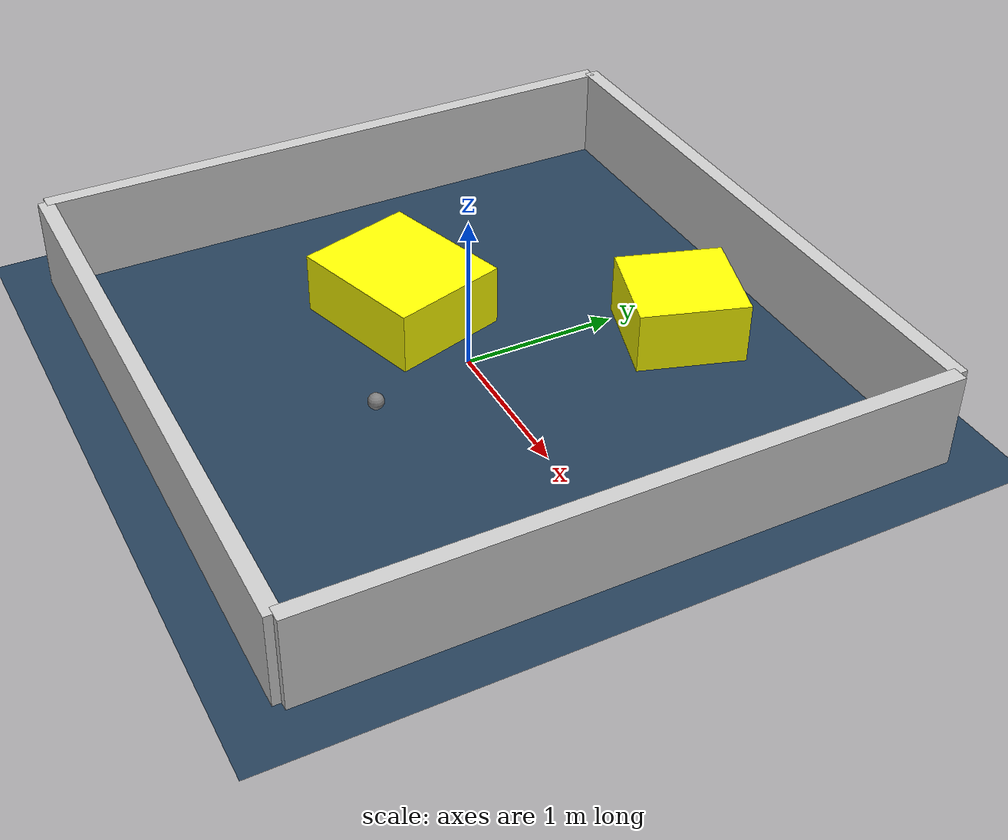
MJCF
<?xml version="1.0" ?>
<mujoco model="generated_environment">
  <option timestep="0.01" integrator="RK4" cone="elliptic"/>
  <default>
    <geom density="1"/>
  </default>
  <asset>
    <texture builtin="gradient" height="3072" rgb1="0.3 0.5 0.7" rgb2="0 0 0" type="skybox" width="512"/>
    <texture builtin="checker" height="300" mark="edge" markrgb="0.8 0.8 0.8" name="groundplane" rgb1="0.2 0.3 0.4" rgb2="0.1 0.2 0.3" type="2d" width="300"/>
    <material name="groundplane" reflectance="0.2" texrepeat="5 5" texture="groundplane" texuniform="true"/>
    <material name="robot" rgba="0.0 1.0 0.0 1"/>
  </asset>
  <worldbody>
    <light dir="0 0 -1" directional="true" pos="0 0 1.5"/>
    <geom condim="4" friction="1.0 0.005 0.001" material="groundplane" name="floor" size="0 0 0.05" type="plane"/>
    <body name="walls">
      <geom name="wall_1" condim="4" pos="-2.0 0.0 0.3" rgba="0.800000011920929 0.800000011920929 0.800000011920929 1.0" size="0.05 2.0 0.3" type="box"/>
      <geom name="wall_2" condim="4" pos="2.0 0.0 0.3" rgba="0.800000011920929 0.800000011920929 0.800000011920929 1.0" size="0.05 2.0 0.3" type="box"/>
      <geom name="wall_3" condim="4" pos="0.0 -2.0 0.3" rgba="0.800000011920929 0.800000011920929 0.800000011920929 1.0" size="2.0 0.05 0.3" type="box"/>
      <geom name="wall_4" condim="4" pos="0.0 2.0 0.3" rgba="0.800000011920929 0.800000011920929 0.800000011920929 1.0" size="2.0 0.05 0.3" type="box"/>
    </body>
    <body name="robot">
      <joint name="joint_x" type="slide" pos="0 0 0" axis="1 0 0"/>
      <joint name="joint_y" type="slide" pos="0 0 0" axis="0 1 0"/>
      <geom name="robot" type="sphere" pos="0.3280508463303322 -0.7553744901382291 0.2" size="0.05" mass="5." friction="1.0 0.005 0.0001" condim="4"/>
      <site name="sensor_ball"/>
    </body>
    <body name="obstacle_1_movable">
      <geom name="obstacle_1_movable" condim="4" pos="-0.6337740197013424 -0.14625328069415433 0.2" euler="0 0 196.74857454299698" friction="1.0 0.005 0.001" rgba="1 1 0 1" size="0.4585324386850158 0.38796447825301605 0.2" type="box" mass="0.1"/>
      <joint type="free"/>
    </body>
    <body name="obstacle_2_movable">
      <geom name="obstacle_2_movable" condim="4" pos="0.32927844065845924 1.298965654131182 0.2" euler="0 0 162.5795695608794" friction="1.0 0.005 0.001" rgba="1 1 0 1" size="0.3303327623605708 0.3464440941223551 0.2" type="box" mass="0.1"/>
      <joint type="free"/>
    </body>
  </worldbody>
  <actuator>
    <motor name="actuator_x" joint="joint_x" gear="1" ctrlrange="-1 1"/>
    <motor name="actuator_y" joint="joint_y" gear="1" ctrlrange="-1 1"/>
  </actuator>
</mujoco>
